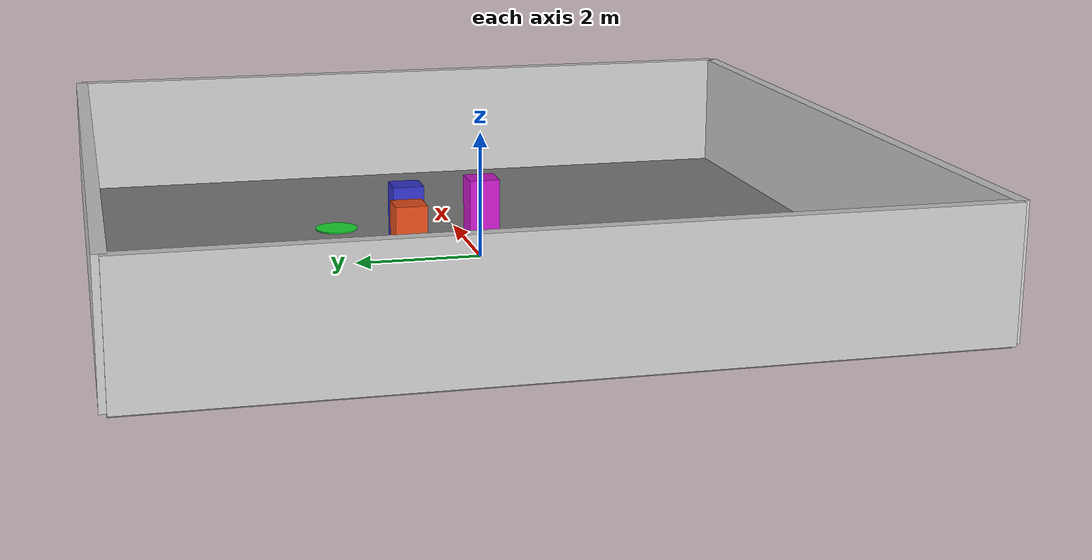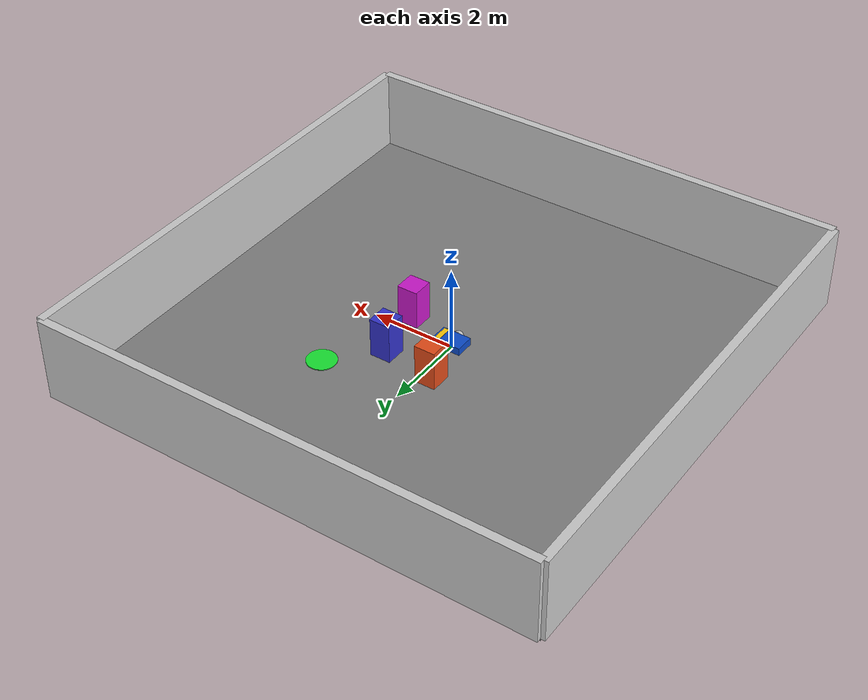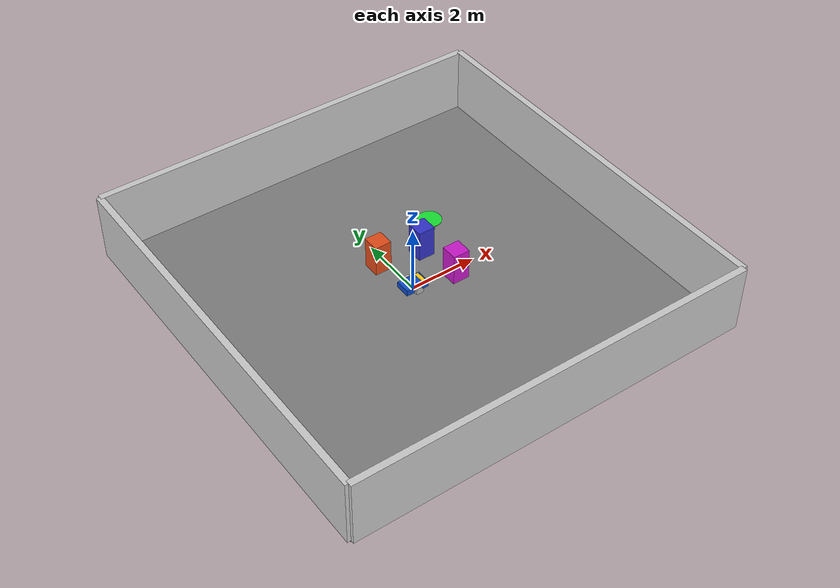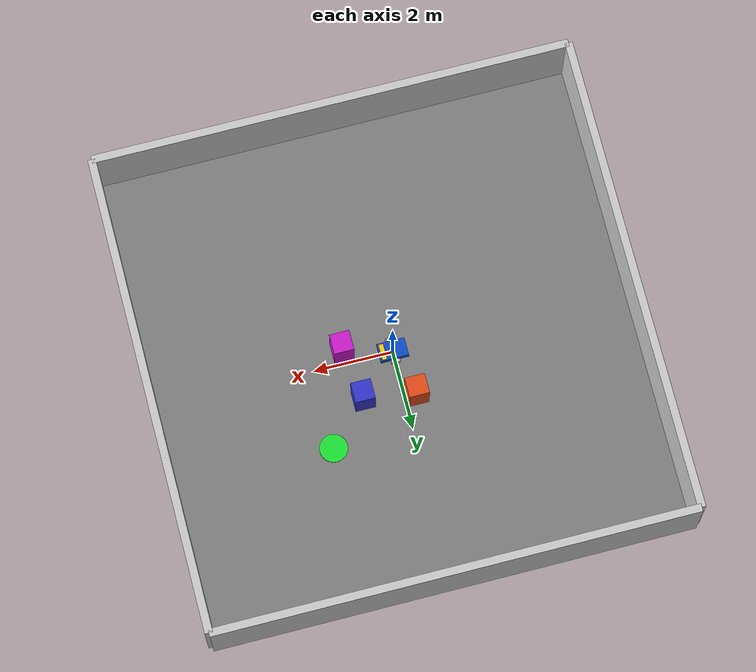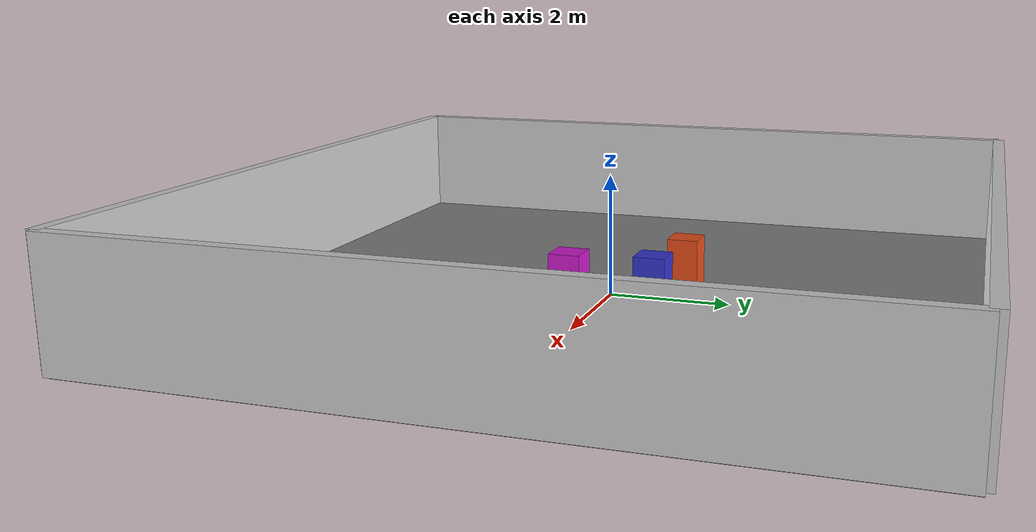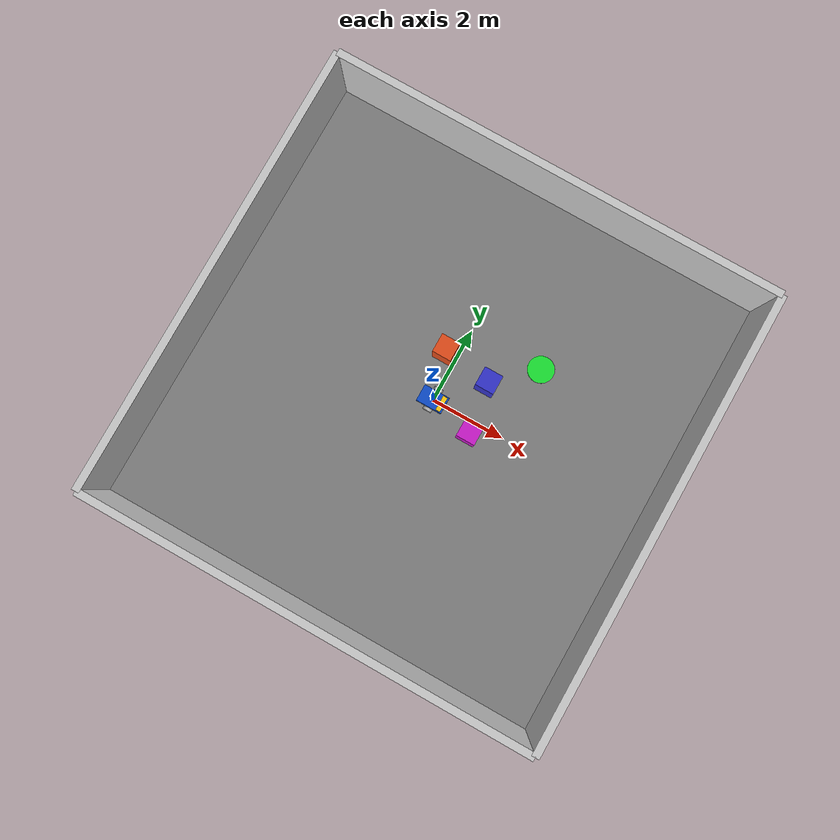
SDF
<?xml version="1.0" ?>
<sdf version="1.9">
  <world name="simple_room">

    <magnetic_field>6.0e-6 2.3e-5 -4.2e-5</magnetic_field>

    <spherical_coordinates>
      <surface_model>EARTH_WGS84</surface_model>
      <world_frame_orientation>ENU</world_frame_orientation>
      <latitude_deg>47.397742</latitude_deg>
      <longitude_deg>8.545594</longitude_deg>
      <elevation>488.0</elevation>
      <heading_deg>0</heading_deg>
    </spherical_coordinates>
    <plugin
      filename="gz-sim-physics-system"
      name="gz::sim::systems::Physics">
    </plugin>

    <plugin
      filename="gz-sim-user-commands-system"
      name="gz::sim::systems::UserCommands">
    </plugin>

    <plugin
      filename="gz-sim-scene-broadcaster-system"
      name="gz::sim::systems::SceneBroadcaster">
    </plugin>

    <plugin
      filename="gz-sim-sensors-system"
      name="gz::sim::systems::Sensors">
      <render_engine>ogre2</render_engine>
    </plugin>

    <plugin
      filename="gz-sim-imu-system"
      name="gz::sim::systems::Imu">
    </plugin>

    <plugin
      filename="gz-sim-air-pressure-system"
      name="gz::sim::systems::AirPressure">
    </plugin>

    <plugin
      filename="gz-sim-magnetometer-system"
      name="gz::sim::systems::Magnetometer">
    </plugin>

    <gravity>0 0 -9.81</gravity>

    <scene>
      <ambient>0.4 0.4 0.4 1</ambient>
      <background>0.7 0.8 1.0 1</background>
    </scene>

    <light name="sun" type="directional">
      <pose>0 0 10 0 0 0</pose>
      <diffuse>0.8 0.8 0.8 1</diffuse>
      <specular>0.2 0.2 0.2 1</specular>
      <direction>-0.5 0.5 -1</direction>
    </light>

    <model name="floor">
      <static>true</static>
      <link name="floor_link">
        <collision name="floor_collision">
          <geometry>
            <box>
              <size>12 12 0.1</size>
            </box>
          </geometry>
        </collision>

        <visual name="floor_visual">
          <geometry>
            <box>
              <size>12 12 0.1</size>
            </box>
          </geometry>
          <material>
            <ambient>0.5 0.5 0.5 1</ambient>
            <diffuse>0.5 0.5 0.5 1</diffuse>
          </material>
        </visual>
      </link>
    </model>

    <model name="wall_front">
      <static>true</static>
      <pose>0 6 1 0 0 0</pose>
      <link name="wall_front_link">
        <collision name="wall_front_collision">
          <geometry>
            <box>
              <size>12 0.2 2</size>
            </box>
          </geometry>
        </collision>

        <visual name="wall_front_visual">
          <geometry>
            <box>
              <size>12 0.2 2</size>
            </box>
          </geometry>
          <material>
            <ambient>0.8 0.8 0.8 1</ambient>
            <diffuse>0.8 0.8 0.8 1</diffuse>
          </material>
        </visual>
      </link>
    </model>

    <model name="wall_back">
      <static>true</static>
      <pose>0 -6 1 0 0 0</pose>
      <link name="wall_back_link">
        <collision name="wall_back_collision">
          <geometry>
            <box>
              <size>12 0.2 2</size>
            </box>
          </geometry>
        </collision>

        <visual name="wall_back_visual">
          <geometry>
            <box>
              <size>12 0.2 2</size>
            </box>
          </geometry>
          <material>
            <ambient>0.8 0.8 0.8 1</ambient>
            <diffuse>0.8 0.8 0.8 1</diffuse>
          </material>
        </visual>
      </link>
    </model>

    <model name="wall_left">
      <static>true</static>
      <pose>-6 0 1 0 0 0</pose>
      <link name="wall_left_link">
        <collision name="wall_left_collision">
          <geometry>
            <box>
              <size>0.2 12 2</size>
            </box>
          </geometry>
        </collision>

        <visual name="wall_left_visual">
          <geometry>
            <box>
              <size>0.2 12 2</size>
            </box>
          </geometry>
          <material>
            <ambient>0.8 0.8 0.8 1</ambient>
            <diffuse>0.8 0.8 0.8 1</diffuse>
          </material>
        </visual>
      </link>
    </model>

    <model name="wall_right">
      <static>true</static>
      <pose>6 0 1 0 0 0</pose>
      <link name="wall_right_link">
        <collision name="wall_right_collision">
          <geometry>
            <box>
              <size>0.2 12 2</size>
            </box>
          </geometry>
        </collision>

        <visual name="wall_right_visual">
          <geometry>
            <box>
              <size>0.2 12 2</size>
            </box>
          </geometry>
          <material>
            <ambient>0.8 0.8 0.8 1</ambient>
            <diffuse>0.8 0.8 0.8 1</diffuse>
          </material>
        </visual>
      </link>
    </model>

    <model name="center_obstacle">
      <static>true</static>
      <pose>1 1 0.5 0 0 0</pose>
      <link name="center_obstacle_link">
        <collision name="center_obstacle_collision">
          <geometry>
            <box>
              <size>0.5 0.5 1</size>
            </box>
          </geometry>
        </collision>

        <visual name="center_obstacle_visual">
          <geometry>
            <box>
              <size>0.5 0.5 1</size>
            </box>
          </geometry>
          <material>
            <ambient>0.2 0.2 0.8 1</ambient>
            <diffuse>0.2 0.2 0.8 1</diffuse>
          </material>
        </visual>
      </link>
    </model>
<include>
  <uri>model://simple_rover</uri>
  <pose>0 0 0 0 0 0</pose>
</include>
    <!-- Green target area at x=2, y=2 -->
    <model name="target_marker">
      <static>true</static>
      <pose>2 2 0.065 0 0 0</pose>

      <link name="marker_link">
        <visual name="marker_visual">
          <geometry>
            <cylinder>
              <radius>0.35</radius>
              <length>0.02</length>
            </cylinder>
          </geometry>

          <material>
            <ambient>0.1 0.9 0.2 1</ambient>
            <diffuse>0.1 0.9 0.2 1</diffuse>
            <emissive>0.02 0.2 0.04 1</emissive>
          </material>
        </visual>
      </link>
    </model>
    <!-- Extra obstacle to test choosing the right-hand detour -->
    <model name="left_detour_blocker">
      <static>true</static>
      <pose>-0.3 1.2 0.5 0 0 0</pose>

      <link name="blocker_link">
        <collision name="blocker_collision">
          <geometry>
            <box>
              <size>0.5 0.5 1</size>
            </box>
          </geometry>
        </collision>

        <visual name="blocker_visual">
          <geometry>
            <box>
              <size>0.5 0.5 1</size>
            </box>
          </geometry>
          <material>
            <ambient>0.9 0.3 0.1 1</ambient>
            <diffuse>0.9 0.3 0.1 1</diffuse>
          </material>
        </visual>
      </link>
    </model>
    <!-- Block the right detour for the stopped-state test -->
    <model name="right_detour_blocker">
      <static>true</static>
      <pose>1.2 -0.3 0.5 0 0 0</pose>

      <link name="blocker_link">
        <collision name="blocker_collision">
          <geometry>
            <box>
              <size>0.5 0.5 1</size>
            </box>
          </geometry>
        </collision>

        <visual name="blocker_visual">
          <geometry>
            <box>
              <size>0.5 0.5 1</size>
            </box>
          </geometry>
          <material>
            <ambient>0.8 0.1 0.8 1</ambient>
            <diffuse>0.8 0.1 0.8 1</diffuse>
          </material>
        </visual>
      </link>
    </model>
  </world>
</sdf>

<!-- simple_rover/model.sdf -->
<sdf version="1.9">
  <model name="simple_rover">
    <pose>0 0 0.15 0 0 0</pose>

    <link name="base_link">
      <pose>0 0 0.15 0 0 0</pose>

      <inertial>
        <mass>5.0</mass>
        <inertia>
          <ixx>0.2</ixx>
          <iyy>0.2</iyy>
          <izz>0.2</izz>
          <ixy>0</ixy>
          <ixz>0</ixz>
          <iyz>0</iyz>
        </inertia>
      </inertial>

      <collision name="base_collision">
        <geometry>
          <box>
            <size>0.7 0.45 0.18</size>
          </box>
        </geometry>
      </collision>
      <!-- Front support to prevent the chassis tipping forward. -->
      <collision name="front_support_collision">
        <pose>0.28 0 -0.10 0 0 0</pose>
        <geometry>
          <sphere>
            <radius>0.05</radius>
          </sphere>
        </geometry>
        <surface>
          <friction>
            <ode>
              <mu>0.0</mu>
              <mu2>0.0</mu2>
            </ode>
          </friction>
        </surface>
      </collision>

      <!-- Rear support to prevent the chassis tipping backward. -->
      <collision name="rear_support_collision">
        <pose>-0.28 0 -0.10 0 0 0</pose>
        <geometry>
          <sphere>
            <radius>0.05</radius>
          </sphere>
        </geometry>
        <surface>
          <friction>
            <ode>
              <mu>0.0</mu>
              <mu2>0.0</mu2>
            </ode>
          </friction>
        </surface>
      </collision>

            <!-- Blue chassis -->
      <visual name="base_visual">
        <geometry>
          <box>
            <size>0.7 0.45 0.18</size>
          </box>
        </geometry>
        <material>
          <ambient>0.05 0.3 0.8 1</ambient>
          <diffuse>0.05 0.3 0.8 1</diffuse>
        </material>
      </visual>

      <!-- Yellow stripe on top, near the front (+X) -->
      <visual name="front_stripe">
        <pose>0.25 0 0.095 0 0 0</pose>
        <geometry>
          <box>
            <size>0.12 0.4 0.01</size>
          </box>
        </geometry>
        <material>
          <ambient>1 0.8 0.05 1</ambient>
          <diffuse>1 0.8 0.05 1</diffuse>
        </material>
      </visual>
      <!-- Horizontal LiDAR mounted above the chassis -->
      <sensor name="rover_lidar" type="gpu_lidar">
        <pose>0 0 0.20 0 0 0</pose>
        <topic>/scan</topic>
        <update_rate>10</update_rate>
        <always_on>true</always_on>
        <visualize>false</visualize>

        <lidar>
          <scan>
            <horizontal>
              <samples>1081</samples>
              <resolution>1</resolution>
              <min_angle>-3.141593</min_angle>
              <max_angle>3.141593</max_angle>
            </horizontal>
          </scan>
          <range>
            <min>0.10</min>
            <max>8.0</max>
            <resolution>0.01</resolution>
          </range>
        </lidar>
      </sensor>
    </link>

    <link name="left_wheel">
      <pose>0 0.28 0.12 1.5708 0 0</pose>
      <inertial>
        <mass>0.5</mass>
        <inertia>
          <ixx>0.01</ixx>
          <iyy>0.01</iyy>
          <izz>0.01</izz>
          <ixy>0</ixy>
          <ixz>0</ixz>
          <iyz>0</iyz>
        </inertia>
      </inertial>
      <collision name="left_wheel_collision">
        <geometry>
          <cylinder>
            <radius>0.12</radius>
            <length>0.08</length>
          </cylinder>
        </geometry>
      </collision>
      <visual name="left_wheel_visual">
        <geometry>
          <cylinder>
            <radius>0.12</radius>
            <length>0.08</length>
          </cylinder>
        </geometry>
      </visual>
    </link>

    <link name="right_wheel">
      <pose>0 -0.28 0.12 1.5708 0 0</pose>
      <inertial>
        <mass>0.5</mass>
        <inertia>
          <ixx>0.01</ixx>
          <iyy>0.01</iyy>
          <izz>0.01</izz>
          <ixy>0</ixy>
          <ixz>0</ixz>
          <iyz>0</iyz>
        </inertia>
      </inertial>
      <collision name="right_wheel_collision">
        <geometry>
          <cylinder>
            <radius>0.12</radius>
            <length>0.08</length>
          </cylinder>
        </geometry>
      </collision>
      <visual name="right_wheel_visual">
        <geometry>
          <cylinder>
            <radius>0.12</radius>
            <length>0.08</length>
          </cylinder>
        </geometry>
      </visual>
    </link>

    <joint name="left_wheel_joint" type="revolute">
      <parent>base_link</parent>
      <child>left_wheel</child>
      <axis>
        <xyz>0 0 -1</xyz>
      </axis>
    </joint>

    <joint name="right_wheel_joint" type="revolute">
      <parent>base_link</parent>
      <child>right_wheel</child>
      <axis>
        <xyz>0 0 -1</xyz>
      </axis>
    </joint>

    <plugin
      filename="gz-sim-diff-drive-system"
      name="gz::sim::systems::DiffDrive">

      <left_joint>left_wheel_joint</left_joint>
      <right_joint>right_wheel_joint</right_joint>

      <wheel_separation>0.56</wheel_separation>
      <wheel_radius>0.12</wheel_radius>

      <topic>/cmd_vel</topic>
      <odom_topic>/odom</odom_topic>
      <tf_topic>/model/simple_rover/tf</tf_topic>
      <frame_id>odom</frame_id>
      <child_frame_id>base_link</child_frame_id>
    </plugin>

  </model>
</sdf>
